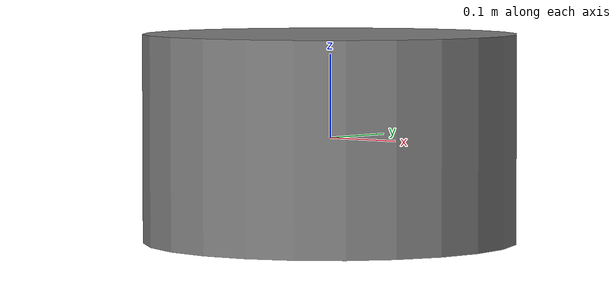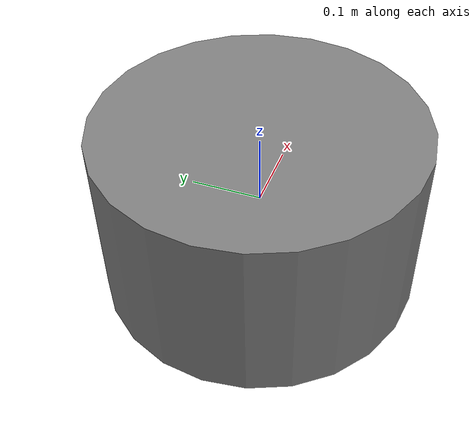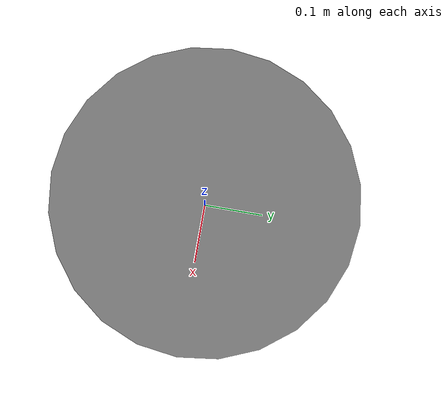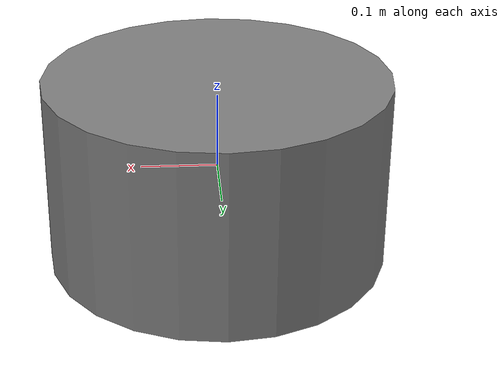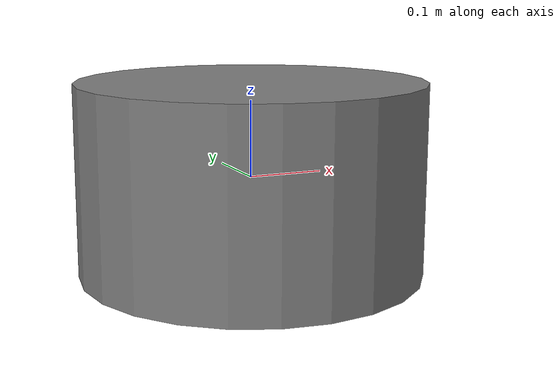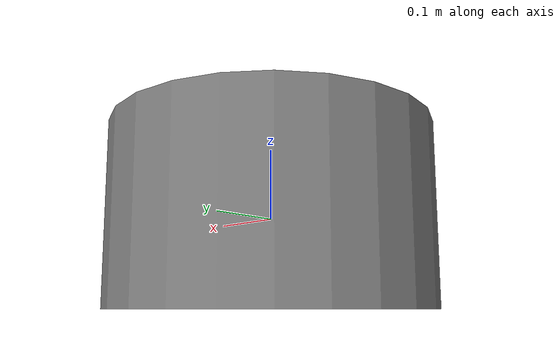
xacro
<?xml version="1.0"?>
<robot xmlns:xacro="http://ros.org/wiki/xacro" name="cylinder_object">
  <xacro:property name="cyl_radius" value="0.225"/>
  <xacro:property name="cyl_height" value="0.25"/>

  <link name="cylinder_link">
    <visual>
      <geometry>
        <cylinder radius="${cyl_radius}" length="${cyl_height}"/>
      </geometry>
      <material name="Grey">
        <color rgba="0.5 0.5 0.5 1.0"/>
      </material>
    </visual>

    <collision>
      <geometry>
        <cylinder radius="${cyl_radius}" length="${cyl_height}"/>
      </geometry>
    </collision>

    <inertial>
      <mass value="1.0"/>
      <inertia ixx="0.0128" ixy="0.0" ixz="0.0"
               iyy="0.0128" iyz="0.0"
               izz="0.0253"/>
    </inertial>
  </link>

  <gazebo reference="cylinder_link">
    <visual>
      <material>
        <ambient>1 0 0 1</ambient>
        <diffuse>1 0 0 1</diffuse>
        <specular>0.5 0.5 0.5 1</specular>
      </material>
    </visual>
    <collision>
      <surface>
        <friction>
          <ode>
            <mu>0.8</mu>
            <mu2>0.8</mu2>
          </ode>
        </friction>
      </surface>
    </collision>
  <gravity>0</gravity>
  <static>true</static>
  </gazebo>

</robot>
